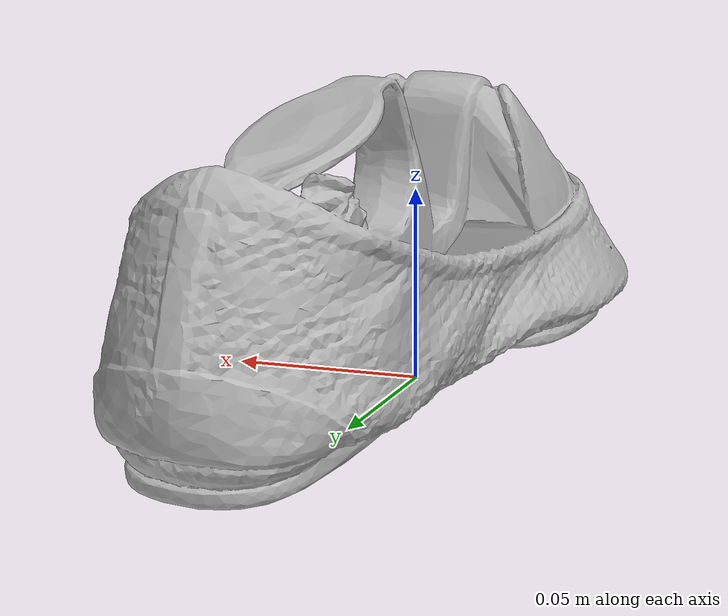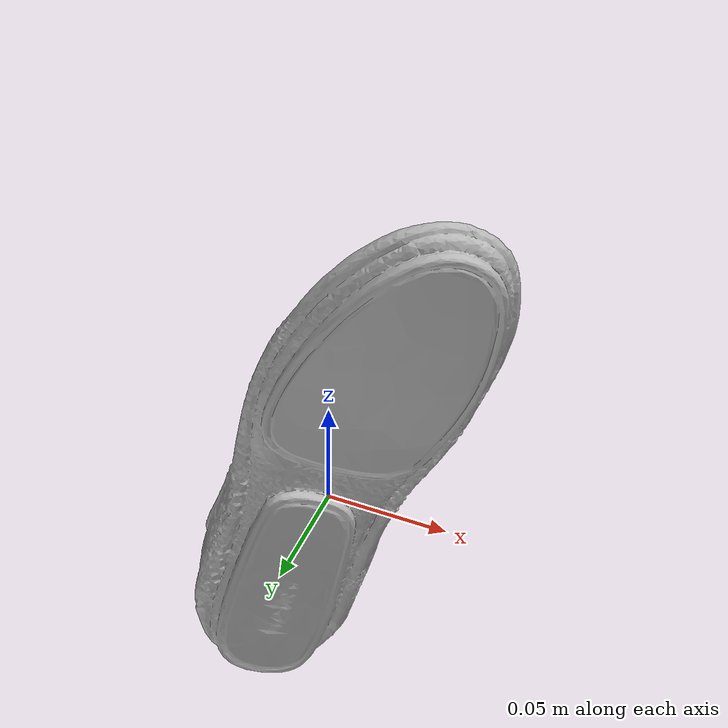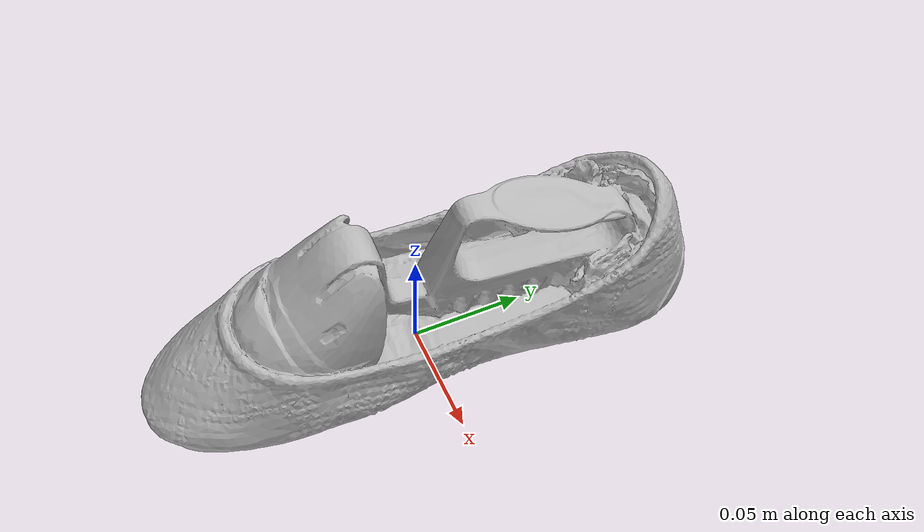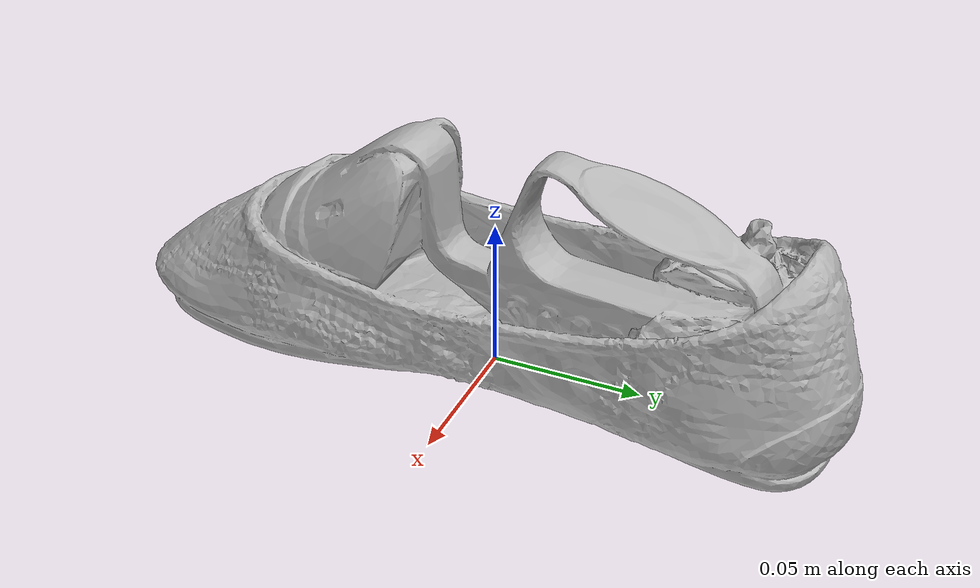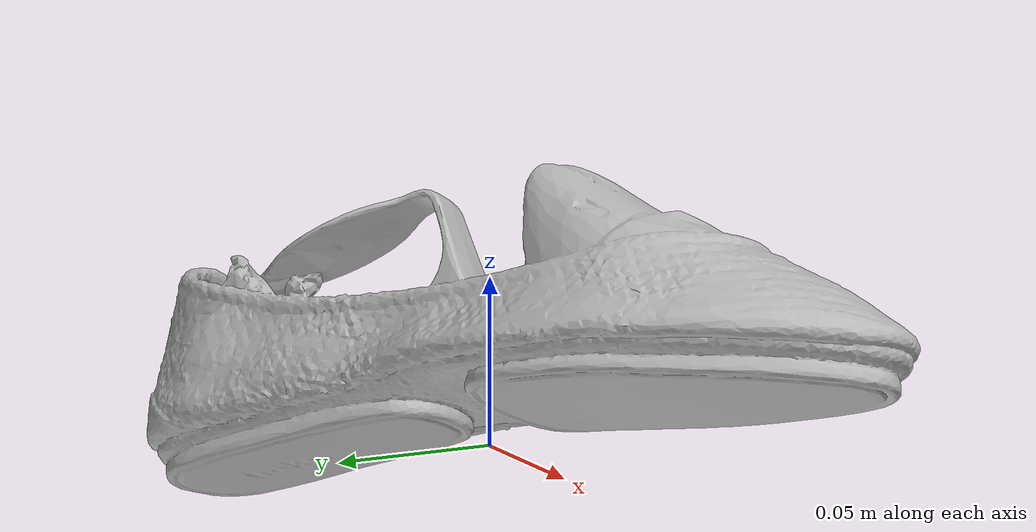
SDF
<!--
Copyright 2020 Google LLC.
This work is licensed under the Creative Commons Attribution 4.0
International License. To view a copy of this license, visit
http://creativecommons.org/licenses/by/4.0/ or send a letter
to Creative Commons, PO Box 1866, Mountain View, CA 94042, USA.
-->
<?xml version="1.0" ?>
<sdf version="1.6">
  <model name="Azure_Snake_Tieks_Leather_Snake_Print_Ballet_Flats">
    <link name="link_0">
      <visual name="visual">
        <geometry>
          <mesh>
            <uri>meshes/model.obj</uri>
          </mesh>
        </geometry>
      </visual>
      <collision name="collision_0">
        <geometry>
          <mesh>
            <uri>meshes/model.obj</uri>
          </mesh>
        </geometry>
      </collision>
    </link>
  </model>
</sdf>
